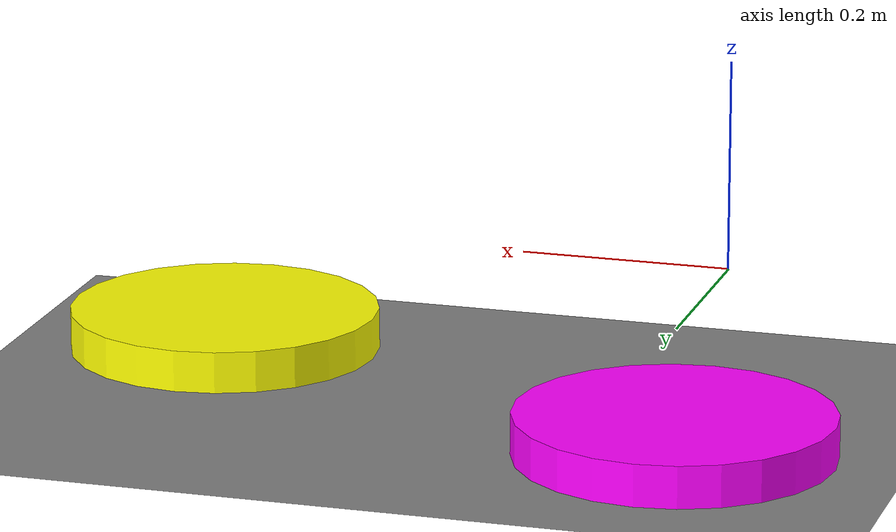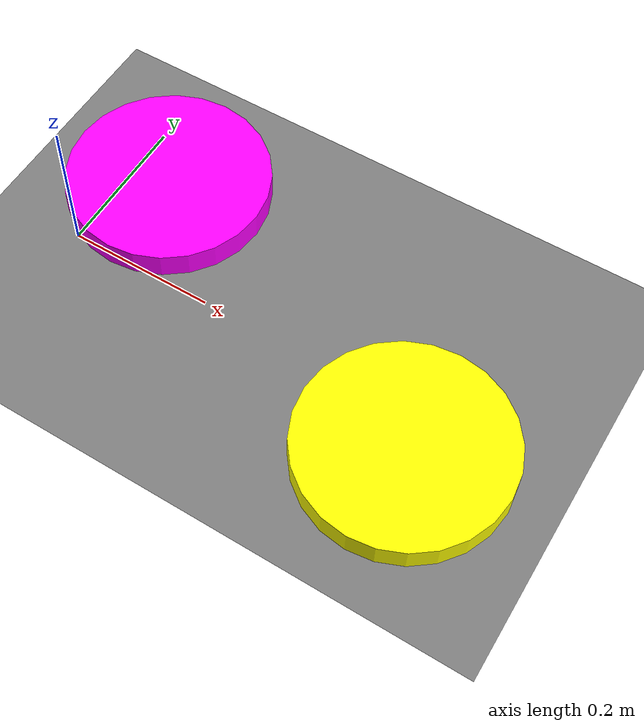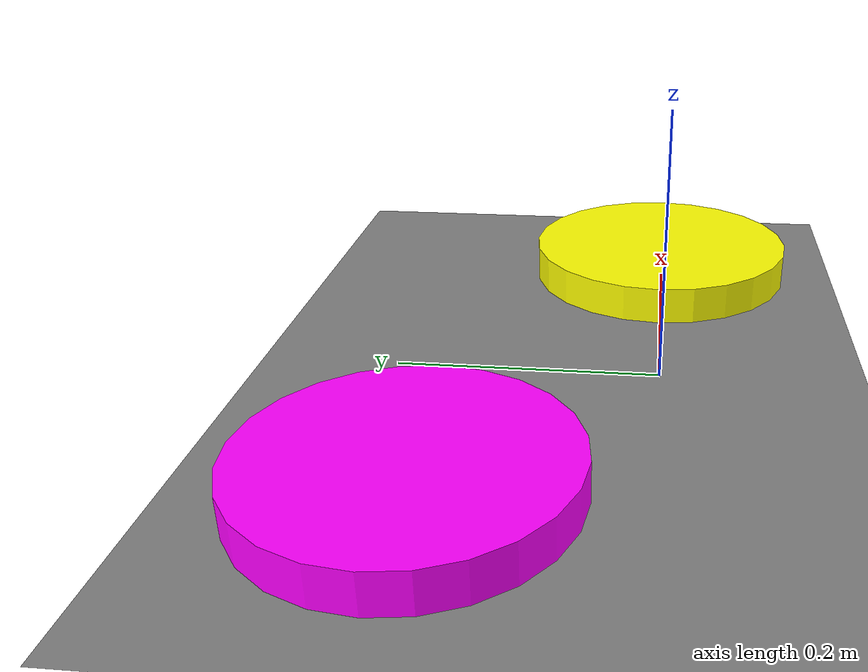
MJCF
<mujoco model="pucks">
    <compiler inertiafromgeom="true" angle="radian" coordinate="local"/>
    <custom>
        <numeric name="frame_skip" data="1"/>
    </custom>
    <option timestep="0.001" gravity="0 0 0" iterations="20" integrator="Euler"/>

    <default>
        <geom friction="0. 0. 0."/>
    </default>

    <worldbody>
        <light diffuse=".5 .5 .5" pos="0 0 3" dir="0 0 -1"/>
        <geom type="plane" pos="0 0.5 -0.125" size="2 2 0.1" condim="3" friction="0.1 0.005 0.0001"/>

        <body name="object1" pos="0 0.2 -0.1">
            <geom size="0.15 0.02" type="cylinder" condim="3" name="object1geom" friction="0.1 0.005 0.0001" rgba="1 0 1 1" mass="2"/>
            <site name="object1site" pos="0 0 0" size="0.02 0.02 0.02" rgba="1 0 0 1" type="sphere"/>
            <joint name="obj1_slidex" type="slide" axis="1 0 0" />
            <joint name="obj1_slidey" type="slide" axis="0 1 0" />
        </body>

        <body name="object2" pos="0.5 0 -0.1">
            <geom size="0.15 0.02" type="cylinder" condim="3" name="object2geom" friction="0.1 0.005 0.0001" rgba="1 1 0 1" mass="2"/>
            <site name="object2site" pos="0 0 0" size="0.02 0.02 0.02" rgba="1 0 0 1" type="sphere"/>
            <joint name="obj2_slidex" type="slide" axis="1 0 0" />
            <joint name="obj2_slidey" type="slide" axis="0 1 0" />
        </body>
    </worldbody>

    <actuator>
        <motor joint="obj1_slidex" ctrlrange="-1 1" ctrllimited="true"/>
        <motor joint="obj2_slidex" ctrlrange="-1 1" ctrllimited="true"/>

        <motor joint="obj1_slidey" ctrlrange="-1 1" ctrllimited="true"/>
        <motor joint="obj2_slidey" ctrlrange="-1 1" ctrllimited="true"/>
    </actuator>
</mujoco>
